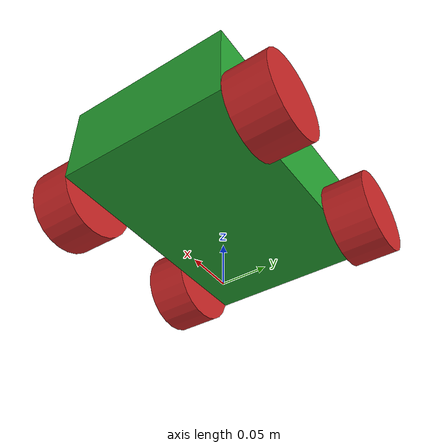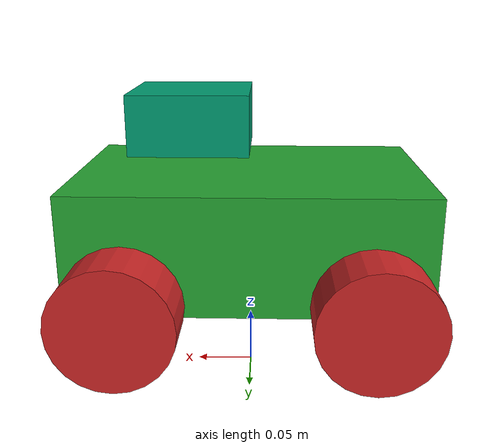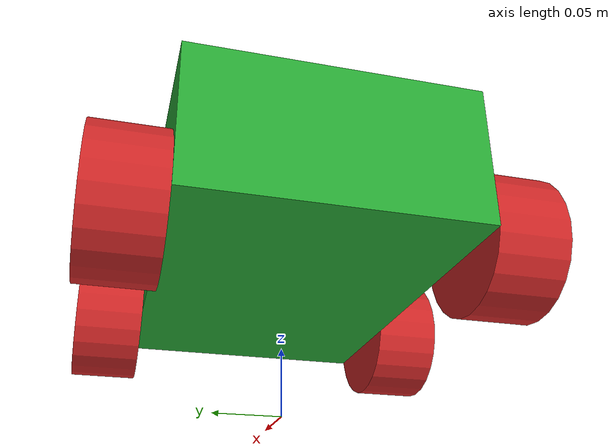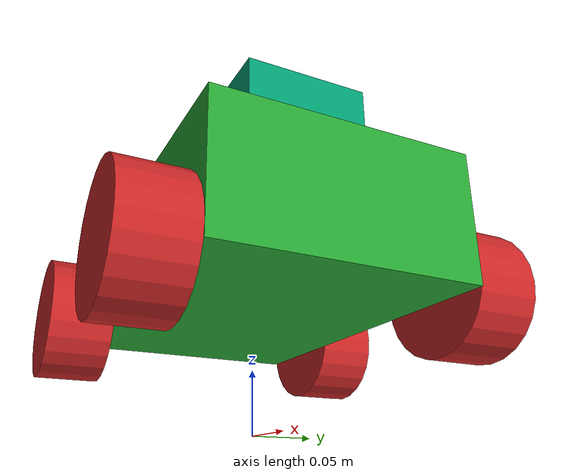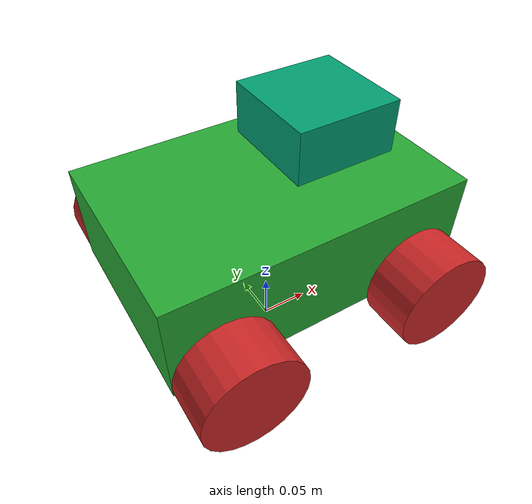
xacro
<?xml version="1.0"?>
<robot xmlns:xacro="http://www.ros.org/wiki/xacro" name="car_laser">

    <xacro:include filename="$(find sentry_laser_sim)/xacro/base_link.xacro" />
    <xacro:include filename="$(find sentry_laser_sim)/xacro/laser.xacro" />
    <xacro:include filename="$(find sentry_laser_sim)/xacro/wheel.xacro" />
    <xacro:include filename="$(find sentry_laser_sim)/xacro/fun_define.xacro" />

<!--base_link->wheel_l_f-->
<xacro:myjoint_continuous joint_name="base_to_wheel_l_f" joint_type="continuous" x="0.1" y="0.125" z="0" wx="0" wy="0" wz="0" parent_link="base_link_sentry" child_link="wheel_l_f" ax="0" ay="1" az="0"/>

<!--base_link->wheel_r_f-->
<xacro:myjoint_continuous joint_name="base_to_wheel_r_f" joint_type="continuous" x="0.1" y="-0.125" z="0" wx="0" wy="0" wz="0" parent_link="base_link_sentry" child_link="wheel_r_f" ax="0" ay="-1" az="0"/>

<!--base_link->wheel_l_b-->
<xacro:myjoint_continuous joint_name="base_to_wheel_l_b" joint_type="continuous" x="-0.1" y="0.125" z="0" wx="0" wy="0" wz="0" parent_link="base_link_sentry" child_link="wheel_l_b" ax="0" ay="1" az="0"/>

<!--base_link->wheel_r_b-->
<xacro:myjoint_continuous joint_name="base_to_wheel_r_b" joint_type="continuous" x="-0.1" y="-0.125" z="0" wx="0" wy="0" wz="0" parent_link="base_link_sentry" child_link="wheel_r_b" ax="0" ay="-1" az="0"/>

<!--base_footprint->base_link-->
<xacro:myjoint_fixed joint_name="base_footprint_joint" joint_type="fixed" x="0" y="0" z="0.1" wx="0" wz="0.0" wy="0" parent_link="base_footprint" child_link="base_link_sentry"/>

<!--base_footprint->laser_fake_link-->

<!--base_link->camera_link-->

<!--base_link->laser_link-->

<xacro:myjoint_continuous joint_name="yaw_joint" joint_type="continuous" x="0.05" y="0.0" z="0.135" wx="0" wy="0" wz="0" parent_link="base_link_sentry" child_link="laser_link" ax="0" ay="0" az="1"/>

<!-- 每一个驱动轮都需要配置传动装置 -->
    <xacro:joint_trans_v joint_name="base_to_wheel_l_f"/>
    <xacro:joint_trans_v joint_name="base_to_wheel_l_b" />
    <xacro:joint_trans_v joint_name="base_to_wheel_r_f" />
    <xacro:joint_trans_v joint_name="base_to_wheel_r_b" />
    <xacro:joint_trans_e joint_name="yaw_joint" />

  <gazebo>
    <plugin name="gazebo_ros_control" filename="libgazebo_ros_control.so">
                <rosDebugLevel>Debug</rosDebugLevel>
                <publishWheelTF>true</publishWheelTF>
                <robotNamespace>/sentry</robotNamespace>
                <robotSimType>gazebo_ros_control/DefaultRobotHWSim</robotSimType>
                <publishTf>1</publishTf>
                <publishWheelJointState>true</publishWheelJointState>
                <alwaysOn>true</alwaysOn>
                <updateRate>100.0</updateRate>
                <legacyMode>true</legacyMode>
    </plugin>
  </gazebo>

<gazebo>
	<plugin name="mecanum_controller" filename="libgazebo_ros_planar_move.so">
		<commandTopic>cmd_vel</commandTopic>
            <odometryTopic>odom</odometryTopic>
           	<odometryFrame>odom</odometryFrame>
            <robotNamespace>/sentry</robotNamespace>
           	<leftFrontJoint>base_to_wheel_l_f</leftFrontJoint>
           	<rightFrontJoint>base_to_wheel_r_f</rightFrontJoint>
           	<leftRearJoint>base_to_wheel_l_b</leftRearJoint>
		    <rightRearJoint>base_to_wheel_r_b</rightRearJoint>
		    <odometryRate>30</odometryRate>
           	<robotBaseFrame>base_link_sentry</robotBaseFrame>
           	<broadcastTF>1</broadcastTF>
        </plugin>
    </gazebo>
</robot>

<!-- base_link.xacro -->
<robot xmlns:xacro="http://www.ros.org/wiki/xacro" name="base_link">
<xacro:include filename="$(find sentry_laser_sim)/xacro/fun_define.xacro"/>

<!--base_link-->
<xacro:mylink_tri myname="base_link_sentry" l="0.3" w="0.2" h="0.1" x="0" y="0" z="0.04" wx="0" wy="0" wz="0" color="red" r="255" g="0" b="0" a="1" mass="50" ixx="1" ixy="0.0" ixz="0.0" iyy="1" iyz="0.0" izz="1"/>
<gazebo reference="base_link_sentry">
        <material>Gazebo/Green</material>
</gazebo>

<link name="base_footprint">
   </link>

</robot>

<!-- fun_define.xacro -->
<robot xmlns:xacro="http://www.ros.org/wiki/xacro" name="body_define">
<!--常量定义-->
<xacro:property name="M_PI" value="3.1415926535897931" />

<!--定义矩形link-->
<xacro:macro name="mylink_tri" params="myname l w h x y z wx wy wz color r g b a mass ixx ixy ixz iyy iyz izz">
	<link name="${myname}">
	<visual>
		<geometry>
			<box size="${l} ${w} ${h}"/>
		</geometry>
		<origin xyz="${x} ${y} ${z}" rpy="${wx} ${wy} ${wz}"/>
		<meterial name="${color}">
			<color rgba="${r} ${g} ${b} ${a}"/>
		</meterial>
	</visual>
	<collision>
		<geometry>
			<box size="${l} ${w} ${h}"/>
		</geometry>
	</collision>
	<inertial>
		<mass value="${mass}"/>
		<inertia ixx="${ixx}" ixy="${ixy}" ixz="${ixz}" iyy="${iyy}" iyz="${iyz}" izz="${izz}"/>
	</inertial>
	</link>
</xacro:macro>

<!--定义椭圆link-->
<xacro:macro name="mylink_cyl" params="link_name l r_ x y z wx wy wz color r g b a mass ixx ixy ixz iyy iyz izz">
	<link name="${link_name}">
		<visual>
			<geometry>
				<cylinder length="${l}" radius="${r_}"/>
			</geometry>
			<origin xyz="${x} ${y} ${z}" rpy="${wx} ${wy} ${wz}"/>
			<meterial name="${color}">
				<color rgba="${r} ${g} ${b} ${a}"/>
			</meterial>
		</visual>
		<collision>
			<geometry>
				<cylinder length="${l}" radius="${r_}"/>
			</geometry>
		</collision>
		<inertial>
			<mass value="${mass}"/>
			<inertia ixx="${ixx}" ixy="${ixy}" ixz="${ixz}" iyy="${iyy}" iyz="${iyz}" izz="${izz}"/>
		</inertial>
	</link>
</xacro:macro>

<!--定义fixed_joint-->
<xacro:macro name="myjoint_fixed" params="joint_name joint_type x y z wx wz wy parent_link child_link">
	<joint name="${joint_name}" type="${joint_type}">
		<origin xyz="${x} ${y} ${z}" rpy="${wx} ${wy} ${wz}"/>
  		<parent link="${parent_link}"/>
   		<child link="${child_link}"/>
	</joint>
</xacro:macro>

<!--定义continuous_joint-->
<xacro:macro name="myjoint_continuous" params="joint_name joint_type x y z wx wy wz parent_link child_link ax ay az">
	<joint name="${joint_name}" type="${joint_type}">
		<origin xyz="${x} ${y} ${z}" rpy="${wx} ${wy} ${wz}"/>
    		<parent link="${parent_link}" />
    		<child link="${child_link}" />
    		<axis xyz="${ax} ${ay} ${az}"/>
	</joint>
</xacro:macro>

<!-- 传动实现:用于连接控制器与关节 -->
    <xacro:macro name="joint_trans_v" params="joint_name">
        <!-- Transmission is important to link the joints and the controller -->
        <transmission name="${joint_name}_trans">
            <type>transmission_interface/SimpleTransmission</type>
            <joint name="${joint_name}">
                <hardwareInterface>hardware_interface/VelocityJointInterface</hardwareInterface>
            </joint>
            <actuator name="${joint_name}_motor">
                <hardwareInterface>hardware_interface/VelocityJointInterface</hardwareInterface>
                <mechanicalReduction>1</mechanicalReduction>
            </actuator>
        </transmission>
    </xacro:macro>
<!-- 传动实现:用于连接控制器与关节 -->
    <xacro:macro name="joint_trans_e" params="joint_name">
    <transmission name="trans_${joint_name}">
      <type>transmission_interface/SimpleTransmission</type>
      <actuator name="${joint_name}_actuator">
        <mechanicalReduction>1</mechanicalReduction>
      </actuator>
      <joint name="${joint_name}">
        <hardwareInterface>hardware_interface/EffortJointInterface</hardwareInterface>
      </joint>
    </transmission>
    </xacro:macro>

</robot>
